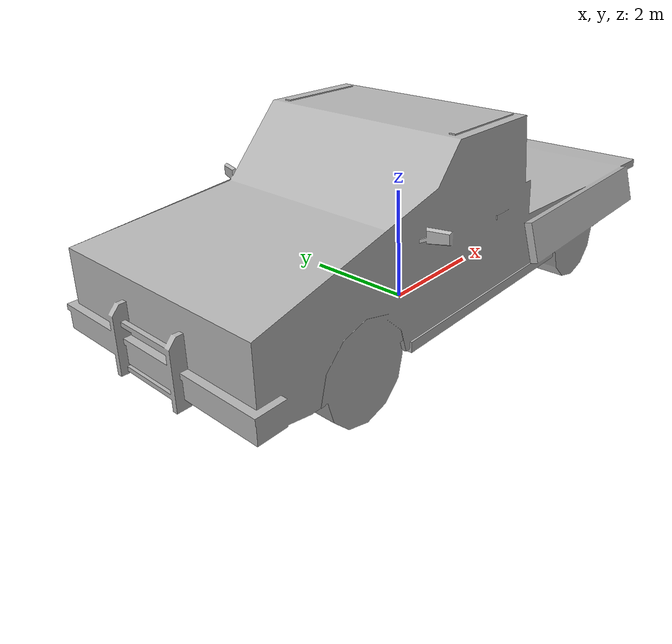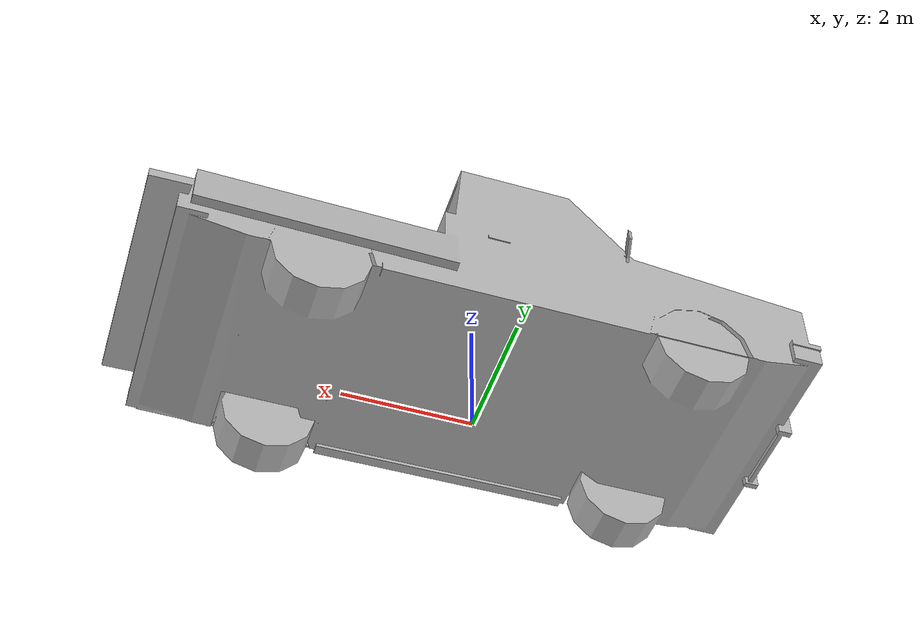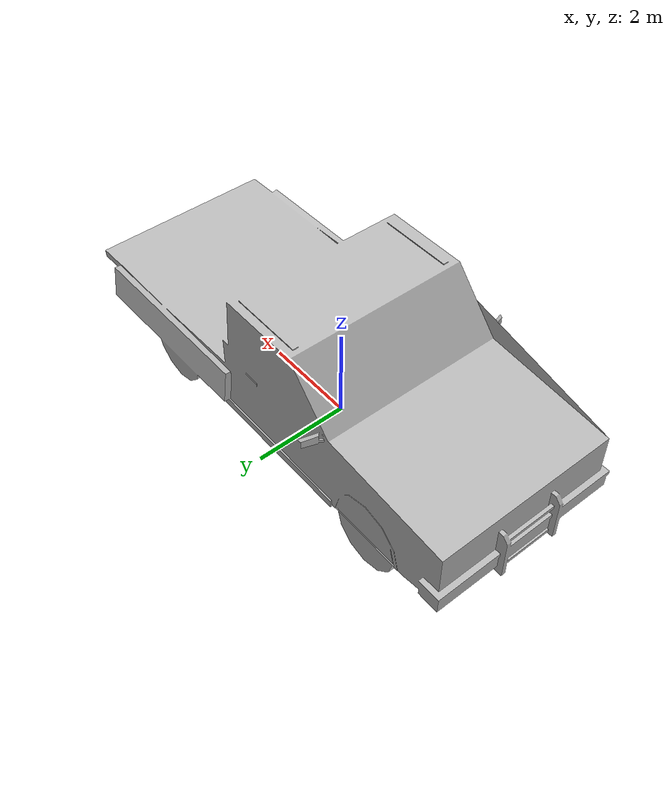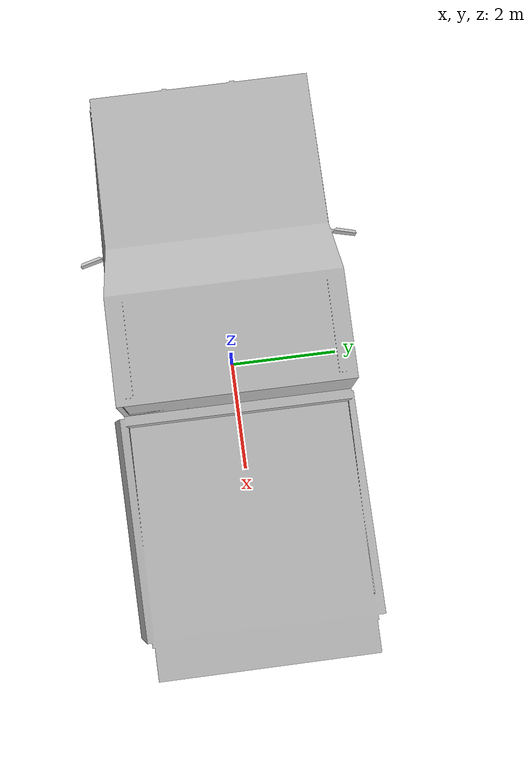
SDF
<?xml version="1.0"?>
<sdf version="1.6">
    <model name="blue_truck">
      <static>true</static>
      <link name="empty_truck">
        <visual name="visual">
          <geometry>
            <mesh><uri>./meshes/blue_truck.obj</uri></mesh>
          </geometry>
        </visual>
        <collision name="collision">
          <geometry>
            <mesh><uri>./meshes/blue_truck.obj</uri></mesh>
          </geometry>
        </collision>
      </link>
    </model>
</sdf>
